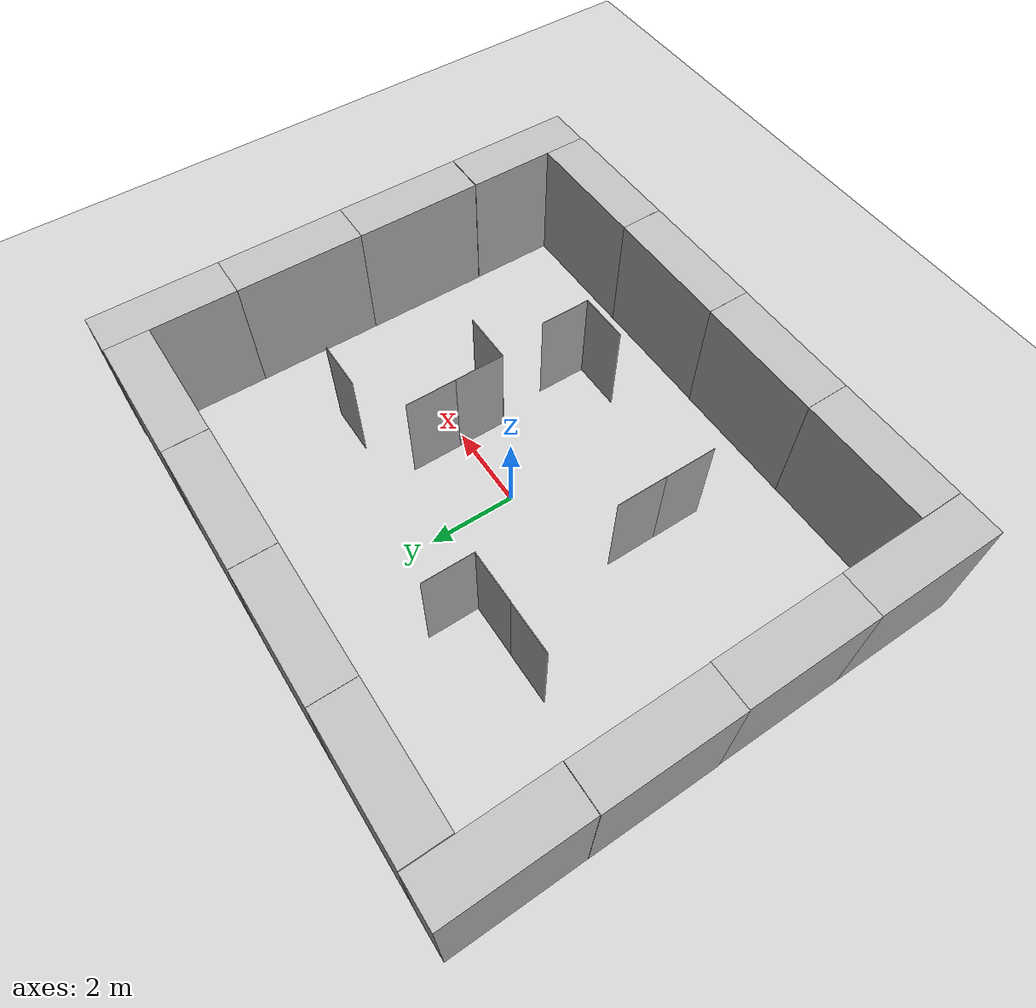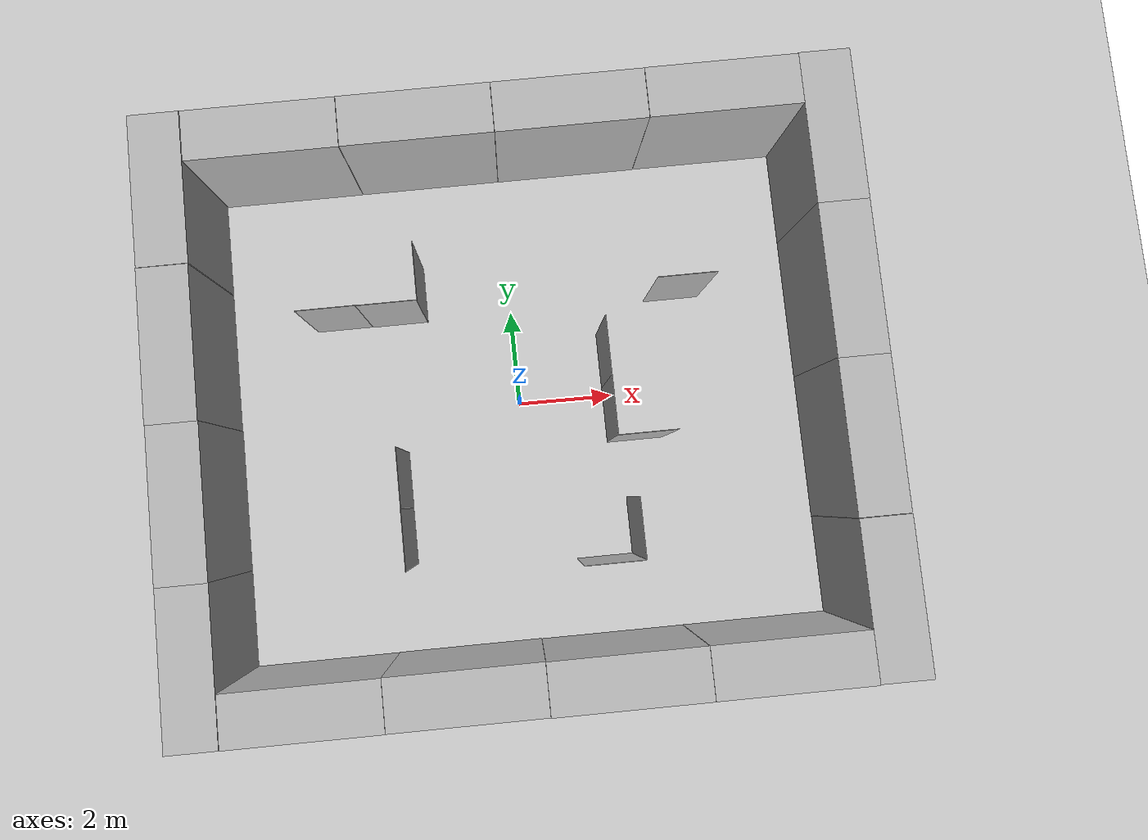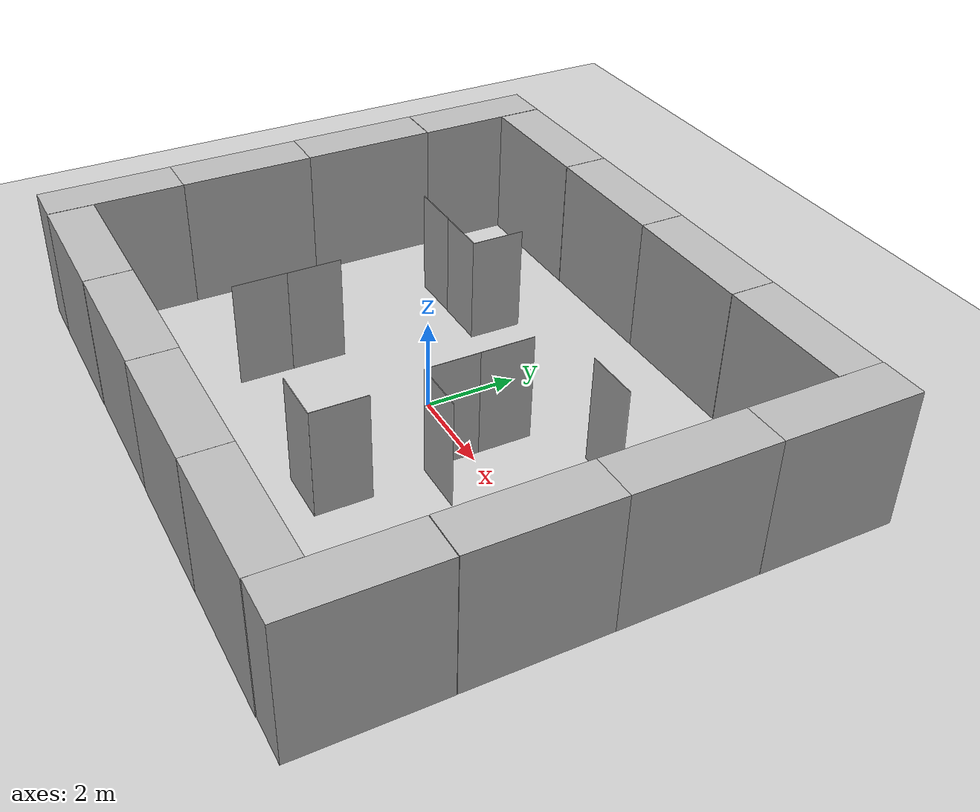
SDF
<sdf version="1.7">
 <world name="default">
  <plugin name="ros_interface_plugin" filename="librotors_gazebo_ros_interface_plugin.so"/>
  <light name="sun" type="directional">
   <pose>0 0 10 0 -0 0</pose>
   <diffuse>0.8 0.8 0.8 1</diffuse>
   <specular>0.2 0.2 0.2 1</specular>
   <attenuation>
    <range>1000</range>
    <constant>0.9</constant>
    <linear>0.01</linear>
    <quadratic>0.001</quadratic>
   </attenuation>
   <direction>-0.5 0.1 -0.9</direction>
   <spot><inner_angle>0</inner_angle><outer_angle>0</outer_angle><falloff>0</falloff></spot>
  </light>
  <model name="ground_plane">
   <static>1</static>
   <link name="link">
    <collision name="collision">
     <geometry><plane><normal>0 0 1</normal><size>100 100</size></plane></geometry>
     <surface><friction><ode><mu>100</mu><mu2>50</mu2></ode></friction></surface>
    </collision>
    <visual name="visual">
     <cast_shadows>0</cast_shadows>
     <geometry><plane><normal>0 0 1</normal><size>100 100</size></plane></geometry>
     <material>
      <script><uri>file://media/materials/scripts/gazebo.material</uri><name>Gazebo/Grey</name></script>
     </material>
    </visual>
   </link>
  </model>
  <gravity>0 0 -9.8</gravity>
  <magnetic_field>6e-06 2.3e-05 -4.2e-05</magnetic_field>
  <atmosphere type="adiabatic"/>
  <physics name="default_physics" default="0" type="ode">
   <max_step_size>0.001</max_step_size>
   <real_time_factor>1</real_time_factor>
   <real_time_update_rate>1000</real_time_update_rate>
  </physics>
  <scene><ambient>0.4 0.4 0.4 1</ambient><background>0.7 0.7 0.7 1</background><shadows>1</shadows></scene>
  <spherical_coordinates>
   <surface_model>EARTH_WGS84</surface_model>
   <latitude_deg>0</latitude_deg>
   <longitude_deg>0</longitude_deg>
   <elevation>0</elevation>
   <heading_deg>0</heading_deg>
  </spherical_coordinates>
  <model name="brick_box_3x1x3">
   <static>1</static>
   <link name="chassis">
    <pose>0 0 1.5 0 -0 0</pose>
    <collision name="collision"><geometry><box><size>3 1 3</size></box></geometry></collision>
    <visual name="visual">
     <geometry><mesh><uri>model://brick_box_3x1x3/meshes/simple_box.dae</uri><scale>3 1 3</scale></mesh></geometry>
     <material>
      <script>
       <uri>model://brick_box_3x1x3/materials/scripts</uri>
       <uri>model://brick_box_3x1x3/materials/textures</uri>
       <name>BrickBox/Diffuse</name>
      </script>
     </material>
    </visual>
   </link>
   <pose>1.49178 -5.50804 0 0 -0 0</pose>
  </model>
  <model name="brick_box_3x1x3_0">
   <static>1</static>
   <link name="chassis">
    <pose>0 0 1.5 0 -0 0</pose>
    <collision name="collision"><geometry><box><size>3 1 3</size></box></geometry></collision>
    <visual name="visual">
     <geometry><mesh><uri>model://brick_box_3x1x3/meshes/simple_box.dae</uri><scale>3 1 3</scale></mesh></geometry>
     <material>
      <script>
       <uri>model://brick_box_3x1x3/materials/scripts</uri>
       <uri>model://brick_box_3x1x3/materials/textures</uri>
       <name>BrickBox/Diffuse</name>
      </script>
     </material>
    </visual>
   </link>
   <pose>-1.51043 -5.50036 0 0 -0 0</pose>
  </model>
  <model name="brick_box_3x1x3_1">
   <static>1</static>
   <link name="chassis">
    <pose>0 0 1.5 0 -0 0</pose>
    <collision name="collision"><geometry><box><size>3 1 3</size></box></geometry></collision>
    <visual name="visual">
     <geometry><mesh><uri>model://brick_box_3x1x3/meshes/simple_box.dae</uri><scale>3 1 3</scale></mesh></geometry>
     <material>
      <script>
       <uri>model://brick_box_3x1x3/materials/scripts</uri>
       <uri>model://brick_box_3x1x3/materials/textures</uri>
       <name>BrickBox/Diffuse</name>
      </script>
     </material>
    </visual>
   </link>
   <pose>1.50118 5.49225 0 0 -0 0</pose>
  </model>
  <model name="brick_box_3x1x3_2">
   <static>1</static>
   <link name="chassis">
    <pose>0 0 1.5 0 -0 0</pose>
    <collision name="collision"><geometry><box><size>3 1 3</size></box></geometry></collision>
    <visual name="visual">
     <geometry><mesh><uri>model://brick_box_3x1x3/meshes/simple_box.dae</uri><scale>3 1 3</scale></mesh></geometry>
     <material>
      <script>
       <uri>model://brick_box_3x1x3/materials/scripts</uri>
       <uri>model://brick_box_3x1x3/materials/textures</uri>
       <name>BrickBox/Diffuse</name>
      </script>
     </material>
    </visual>
   </link>
   <pose>-1.50348 5.4941 0 0 -0 0</pose>
  </model>
  <model name="brick_box_3x1x3_3">
   <static>1</static>
   <link name="chassis">
    <pose>0 0 1.5 0 -0 0</pose>
    <collision name="collision"><geometry><box><size>3 1 3</size></box></geometry></collision>
    <visual name="visual">
     <geometry><mesh><uri>model://brick_box_3x1x3/meshes/simple_box.dae</uri><scale>3 1 3</scale></mesh></geometry>
     <material>
      <script>
       <uri>model://brick_box_3x1x3/materials/scripts</uri>
       <uri>model://brick_box_3x1x3/materials/textures</uri>
       <name>BrickBox/Diffuse</name>
      </script>
     </material>
    </visual>
   </link>
   <pose>-6.5207 4.49478 0 0 -0 1.57257</pose>
  </model>
  <model name="brick_box_3x1x3_4">
   <static>1</static>
   <link name="chassis">
    <pose>0 0 1.5 0 -0 0</pose>
    <collision name="collision"><geometry><box><size>3 1 3</size></box></geometry></collision>
    <visual name="visual">
     <geometry><mesh><uri>model://brick_box_3x1x3/meshes/simple_box.dae</uri><scale>3 1 3</scale></mesh></geometry>
     <material>
      <script>
       <uri>model://brick_box_3x1x3/materials/scripts</uri>
       <uri>model://brick_box_3x1x3/materials/textures</uri>
       <name>BrickBox/Diffuse</name>
      </script>
     </material>
    </visual>
   </link>
   <pose>-4.50856 5.49143 0 0 -0 0</pose>
  </model>
  <model name="brick_box_3x1x3_5">
   <static>1</static>
   <link name="chassis">
    <pose>0 0 1.5 0 -0 0</pose>
    <collision name="collision"><geometry><box><size>3 1 3</size></box></geometry></collision>
    <visual name="visual">
     <geometry><mesh><uri>model://brick_box_3x1x3/meshes/simple_box.dae</uri><scale>3 1 3</scale></mesh></geometry>
     <material>
      <script>
       <uri>model://brick_box_3x1x3/materials/scripts</uri>
       <uri>model://brick_box_3x1x3/materials/textures</uri>
       <name>BrickBox/Diffuse</name>
      </script>
     </material>
    </visual>
   </link>
   <pose>4.5061 5.49704 0 0 -0 0</pose>
  </model>
  <model name="brick_box_3x1x3_6">
   <static>1</static>
   <link name="chassis">
    <pose>0 0 1.5 0 -0 0</pose>
    <collision name="collision"><geometry><box><size>3 1 3</size></box></geometry></collision>
    <visual name="visual">
     <geometry><mesh><uri>model://brick_box_3x1x3/meshes/simple_box.dae</uri><scale>3 1 3</scale></mesh></geometry>
     <material>
      <script>
       <uri>model://brick_box_3x1x3/materials/scripts</uri>
       <uri>model://brick_box_3x1x3/materials/textures</uri>
       <name>BrickBox/Diffuse</name>
      </script>
     </material>
    </visual>
   </link>
   <pose>-4.51318 -5.50466 0 0 -0 0</pose>
  </model>
  <model name="brick_box_3x1x3_7">
   <static>1</static>
   <link name="chassis">
    <pose>0 0 1.5 0 -0 0</pose>
    <collision name="collision"><geometry><box><size>3 1 3</size></box></geometry></collision>
    <visual name="visual">
     <geometry><mesh><uri>model://brick_box_3x1x3/meshes/simple_box.dae</uri><scale>3 1 3</scale></mesh></geometry>
     <material>
      <script>
       <uri>model://brick_box_3x1x3/materials/scripts</uri>
       <uri>model://brick_box_3x1x3/materials/textures</uri>
       <name>BrickBox/Diffuse</name>
      </script>
     </material>
    </visual>
   </link>
   <pose>4.49333 -5.50629 0 0 -0 0</pose>
  </model>
  <model name="brick_box_3x1x3_3_clone">
   <static>1</static>
   <link name="chassis">
    <pose>0 0 1.5 0 -0 0</pose>
    <collision name="collision"><geometry><box><size>3 1 3</size></box></geometry></collision>
    <visual name="visual">
     <geometry><mesh><uri>model://brick_box_3x1x3/meshes/simple_box.dae</uri><scale>3 1 3</scale></mesh></geometry>
     <material>
      <script>
       <uri>model://brick_box_3x1x3/materials/scripts</uri>
       <uri>model://brick_box_3x1x3/materials/textures</uri>
       <name>BrickBox/Diffuse</name>
      </script>
     </material>
    </visual>
   </link>
   <pose>-6.52126 1.48858 3e-06 -0.001926 1e-05 1.56943</pose>
  </model>
  <model name="brick_box_3x1x3_3_clone_clone">
   <static>1</static>
   <link name="chassis">
    <pose>0 0 1.5 0 -0 0</pose>
    <collision name="collision"><geometry><box><size>3 1 3</size></box></geometry></collision>
    <visual name="visual">
     <geometry><mesh><uri>model://brick_box_3x1x3/meshes/simple_box.dae</uri><scale>3 1 3</scale></mesh></geometry>
     <material>
      <script>
       <uri>model://brick_box_3x1x3/materials/scripts</uri>
       <uri>model://brick_box_3x1x3/materials/textures</uri>
       <name>BrickBox/Diffuse</name>
      </script>
     </material>
    </visual>
   </link>
   <pose>-6.51467 -1.50944 3e-06 -0.001926 1e-05 1.56943</pose>
  </model>
  <model name="brick_box_3x1x3_3_clone_clone_clone">
   <static>1</static>
   <link name="chassis">
    <pose>0 0 1.5 0 -0 0</pose>
    <collision name="collision"><geometry><box><size>3 1 3</size></box></geometry></collision>
    <visual name="visual">
     <geometry><mesh><uri>model://brick_box_3x1x3/meshes/simple_box.dae</uri><scale>3 1 3</scale></mesh></geometry>
     <material>
      <script>
       <uri>model://brick_box_3x1x3/materials/scripts</uri>
       <uri>model://brick_box_3x1x3/materials/textures</uri>
       <name>BrickBox/Diffuse</name>
      </script>
     </material>
    </visual>
   </link>
   <pose>-6.5148 -4.5007 3e-06 -0.001926 1e-05 1.56943</pose>
  </model>
  <model name="brick_box_3x1x3_3_clone_clone_clone_0">
   <static>1</static>
   <link name="chassis">
    <pose>0 0 1.5 0 -0 0</pose>
    <collision name="collision"><geometry><box><size>3 1 3</size></box></geometry></collision>
    <visual name="visual">
     <geometry><mesh><uri>model://brick_box_3x1x3/meshes/simple_box.dae</uri><scale>3 1 3</scale></mesh></geometry>
     <material>
      <script>
       <uri>model://brick_box_3x1x3/materials/scripts</uri>
       <uri>model://brick_box_3x1x3/materials/textures</uri>
       <name>BrickBox/Diffuse</name>
      </script>
     </material>
    </visual>
   </link>
   <pose>6.49989 -4.49229 3e-06 -0.001926 1e-05 1.56943</pose>
  </model>
  <model name="brick_box_3x1x3_3_clone_clone_clone_1">
   <static>1</static>
   <link name="chassis">
    <pose>0 0 1.5 0 -0 0</pose>
    <collision name="collision"><geometry><box><size>3 1 3</size></box></geometry></collision>
    <visual name="visual">
     <geometry><mesh><uri>model://brick_box_3x1x3/meshes/simple_box.dae</uri><scale>3 1 3</scale></mesh></geometry>
     <material>
      <script>
       <uri>model://brick_box_3x1x3/materials/scripts</uri>
       <uri>model://brick_box_3x1x3/materials/textures</uri>
       <name>BrickBox/Diffuse</name>
      </script>
     </material>
    </visual>
   </link>
   <pose>6.49863 -1.48204 3e-06 -0.001926 1e-05 1.56943</pose>
  </model>
  <model name="brick_box_3x1x3_3_clone_clone_clone_2">
   <static>1</static>
   <link name="chassis">
    <pose>0 0 1.5 0 -0 0</pose>
    <collision name="collision"><geometry><box><size>3 1 3</size></box></geometry></collision>
    <visual name="visual">
     <geometry><mesh><uri>model://brick_box_3x1x3/meshes/simple_box.dae</uri><scale>3 1 3</scale></mesh></geometry>
     <material>
      <script>
       <uri>model://brick_box_3x1x3/materials/scripts</uri>
       <uri>model://brick_box_3x1x3/materials/textures</uri>
       <name>BrickBox/Diffuse</name>
      </script>
     </material>
    </visual>
   </link>
   <pose>6.50304 1.51015 3e-06 -0.001926 1e-05 1.56943</pose>
  </model>
  <model name="brick_box_3x1x3_3_clone_clone_clone_3">
   <static>1</static>
   <link name="chassis">
    <pose>0 0 1.5 0 -0 0</pose>
    <collision name="collision"><geometry><box><size>3 1 3</size></box></geometry></collision>
    <visual name="visual">
     <geometry><mesh><uri>model://brick_box_3x1x3/meshes/simple_box.dae</uri><scale>3 1 3</scale></mesh></geometry>
     <material>
      <script>
       <uri>model://brick_box_3x1x3/materials/scripts</uri>
       <uri>model://brick_box_3x1x3/materials/textures</uri>
       <name>BrickBox/Diffuse</name>
      </script>
     </material>
    </visual>
   </link>
   <pose>6.50831 4.5085 3e-06 -0.001926 1e-05 1.56943</pose>
  </model>
  <model name="nist_maze_wall_240">
   <static>1</static>
   <link name="nist__maze_wall_240_link">
    <collision name="collision">
     <geometry>
      <mesh><uri>model://nist_maze_wall_240/meshes/nist_maze_wall_240.dae</uri><scale>1 1 1</scale></mesh>
     </geometry>
    </collision>
    <visual name="visual">
     <geometry>
      <mesh><uri>model://nist_maze_wall_240/meshes/nist_maze_wall_240.dae</uri><scale>1 1 1</scale></mesh>
     </geometry>
    </visual>
   </link>
   <pose>3.5096 1.40014 0 0 -0 0</pose>
  </model>
  <model name="nist_maze_wall_240_0">
   <static>1</static>
   <link name="nist__maze_wall_240_link">
    <collision name="collision">
     <geometry>
      <mesh><uri>model://nist_maze_wall_240/meshes/nist_maze_wall_240.dae</uri><scale>1 1 1</scale></mesh>
     </geometry>
    </collision>
    <visual name="visual">
     <geometry>
      <mesh><uri>model://nist_maze_wall_240/meshes/nist_maze_wall_240.dae</uri><scale>1 1 1</scale></mesh>
     </geometry>
    </visual>
   </link>
   <pose>2.40649 -1.59547 0 0 -0 0</pose>
  </model>
  <model name="nist_maze_wall_240_1">
   <static>1</static>
   <link name="nist__maze_wall_240_link">
    <collision name="collision">
     <geometry>
      <mesh><uri>model://nist_maze_wall_240/meshes/nist_maze_wall_240.dae</uri><scale>1 1 1</scale></mesh>
     </geometry>
    </collision>
    <visual name="visual">
     <geometry>
      <mesh><uri>model://nist_maze_wall_240/meshes/nist_maze_wall_240.dae</uri><scale>1 1 1</scale></mesh>
     </geometry>
    </visual>
   </link>
   <pose>1.5024 -4.00992 0 0 -0 0</pose>
  </model>
  <model name="nist_maze_wall_240_2">
   <static>1</static>
   <link name="nist__maze_wall_240_link">
    <collision name="collision">
     <geometry>
      <mesh><uri>model://nist_maze_wall_240/meshes/nist_maze_wall_240.dae</uri><scale>1 1 1</scale></mesh>
     </geometry>
    </collision>
    <visual name="visual">
     <geometry>
      <mesh><uri>model://nist_maze_wall_240/meshes/nist_maze_wall_240.dae</uri><scale>1 1 1</scale></mesh>
     </geometry>
    </visual>
   </link>
   <pose>-2.42904 1.40222 0 0 -0 0</pose>
  </model>
  <model name="nist_maze_wall_240_3">
   <static>1</static>
   <link name="nist__maze_wall_240_link">
    <collision name="collision">
     <geometry>
      <mesh><uri>model://nist_maze_wall_240/meshes/nist_maze_wall_240.dae</uri><scale>1 1 1</scale></mesh>
     </geometry>
    </collision>
    <visual name="visual">
     <geometry>
      <mesh><uri>model://nist_maze_wall_240/meshes/nist_maze_wall_240.dae</uri><scale>1 1 1</scale></mesh>
     </geometry>
    </visual>
   </link>
   <pose>-3.62138 1.40807 0 0 -0 0</pose>
  </model>
  <model name="nist_maze_wall_240_4">
   <static>1</static>
   <link name="nist__maze_wall_240_link">
    <collision name="collision">
     <geometry>
      <mesh><uri>model://nist_maze_wall_240/meshes/nist_maze_wall_240.dae</uri><scale>1 1 1</scale></mesh>
     </geometry>
    </collision>
    <visual name="visual">
     <geometry>
      <mesh><uri>model://nist_maze_wall_240/meshes/nist_maze_wall_240.dae</uri><scale>1 1 1</scale></mesh>
     </geometry>
    </visual>
   </link>
   <pose>-3.07855 -2.6024 0 0 0 -1.57111</pose>
  </model>
  <model name="nist_maze_wall_240_4_clone">
   <static>1</static>
   <link name="nist__maze_wall_240_link">
    <collision name="collision">
     <geometry>
      <mesh><uri>model://nist_maze_wall_240/meshes/nist_maze_wall_240.dae</uri><scale>1 1 1</scale></mesh>
     </geometry>
    </collision>
    <visual name="visual">
     <geometry>
      <mesh><uri>model://nist_maze_wall_240/meshes/nist_maze_wall_240.dae</uri><scale>1 1 1</scale></mesh>
     </geometry>
    </visual>
   </link>
   <pose>1.49606 -2.80776 0 0 0 -1.57111</pose>
  </model>
  <model name="nist_maze_wall_240_4_clone_0">
   <static>1</static>
   <link name="nist__maze_wall_240_link">
    <collision name="collision">
     <geometry>
      <mesh><uri>model://nist_maze_wall_240/meshes/nist_maze_wall_240.dae</uri><scale>1 1 1</scale></mesh>
     </geometry>
    </collision>
    <visual name="visual">
     <geometry>
      <mesh><uri>model://nist_maze_wall_240/meshes/nist_maze_wall_240.dae</uri><scale>1 1 1</scale></mesh>
     </geometry>
    </visual>
   </link>
   <pose>1.21288 -0.397133 0 0 0 -1.57111</pose>
  </model>
  <model name="nist_maze_wall_240_4_clone_1">
   <static>1</static>
   <link name="nist__maze_wall_240_link">
    <collision name="collision">
     <geometry>
      <mesh><uri>model://nist_maze_wall_240/meshes/nist_maze_wall_240.dae</uri><scale>1 1 1</scale></mesh>
     </geometry>
    </collision>
    <visual name="visual">
     <geometry>
      <mesh><uri>model://nist_maze_wall_240/meshes/nist_maze_wall_240.dae</uri><scale>1 1 1</scale></mesh>
     </geometry>
    </visual>
   </link>
   <pose>1.21104 0.770553 0 0 0 -1.57111</pose>
  </model>
  <model name="nist_maze_wall_240_4_clone_2">
   <static>1</static>
   <link name="nist__maze_wall_240_link">
    <collision name="collision">
     <geometry>
      <mesh><uri>model://nist_maze_wall_240/meshes/nist_maze_wall_240.dae</uri><scale>1 1 1</scale></mesh>
     </geometry>
    </collision>
    <visual name="visual">
     <geometry>
      <mesh><uri>model://nist_maze_wall_240/meshes/nist_maze_wall_240.dae</uri><scale>1 1 1</scale></mesh>
     </geometry>
    </visual>
   </link>
   <pose>-2.42102 2.58087 0 0 0 -1.57111</pose>
  </model>
  <model name="nist_maze_wall_240_4_clone_3">
   <static>1</static>
   <link name="nist__maze_wall_240_link">
    <collision name="collision">
     <geometry>
      <mesh><uri>model://nist_maze_wall_240/meshes/nist_maze_wall_240.dae</uri><scale>1 1 1</scale></mesh>
     </geometry>
    </collision>
    <visual name="visual">
     <geometry>
      <mesh><uri>model://nist_maze_wall_240/meshes/nist_maze_wall_240.dae</uri><scale>1 1 1</scale></mesh>
     </geometry>
    </visual>
   </link>
   <pose>-3.07471 -1.40673 0 0 0 -1.57111</pose>
  </model>
 </world>
</sdf>
